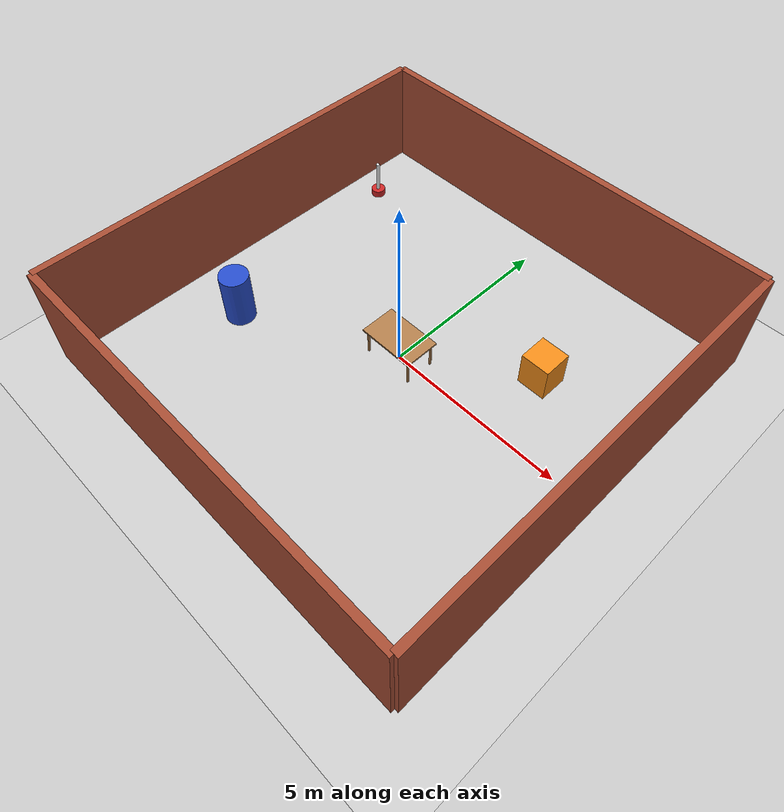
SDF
<?xml version="1.0" ?>
<sdf version="1.6">
  <world name="multi_world">

    <!-- Physics settings -->
    <physics type="ode">
      <max_step_size>0.001</max_step_size>
      <real_time_factor>1.0</real_time_factor>
      <real_time_update_rate>1000</real_time_update_rate>
    </physics>

    <!-- Lighting -->
    <light type="directional" name="sun">
      <cast_shadows>true</cast_shadows>
      <pose>0 0 10 0 0 0</pose>
      <diffuse>0.8 0.8 0.8 1</diffuse>
      <specular>0.2 0.2 0.2 1</specular>
      <attenuation>
        <range>1000</range>
        <constant>0.9</constant>
        <linear>0.01</linear>
        <quadratic>0.001</quadratic>
      </attenuation>
      <direction>-0.5 0.1 -0.9</direction>
    </light>

    <!-- Ground plane -->
    <model name="ground_plane">
      <static>true</static>
      <link name="link">
        <collision name="collision">
          <geometry>
            <plane>
              <normal>0 0 1</normal>
              <size>20 20</size>
            </plane>
          </geometry>
          <surface>
            <friction>
              <ode>
                <mu>100</mu>
                <mu2>50</mu2>
              </ode>
            </friction>
          </surface>
        </collision>
        <visual name="visual">
          <cast_shadows>false</cast_shadows>
          <geometry>
            <plane>
              <normal>0 0 1</normal>
              <size>20 20</size>
            </plane>
          </geometry>
          <material>
            <script>
              <uri>file://media/materials/scripts/gazebo.material</uri>
              <name>Gazebo/Grey</name>
            </script>
          </material>
        </visual>
      </link>
    </model>

    <!-- Room walls -->
    <model name="wall_north">
      <static>true</static>
      <pose>0 6 1.5 0 0 0</pose>
      <link name="link">
        <collision name="collision">
          <geometry><box><size>12 0.2 3</size></box></geometry>
        </collision>
        <visual name="visual">
          <geometry><box><size>12 0.2 3</size></box></geometry>
          <material>
            <script>
              <uri>file://media/materials/scripts/gazebo.material</uri>
              <name>Gazebo/Bricks</name>
            </script>
          </material>
        </visual>
      </link>
    </model>

    <model name="wall_south">
      <static>true</static>
      <pose>0 -6 1.5 0 0 0</pose>
      <link name="link">
        <collision name="collision">
          <geometry><box><size>12 0.2 3</size></box></geometry>
        </collision>
        <visual name="visual">
          <geometry><box><size>12 0.2 3</size></box></geometry>
          <material>
            <script>
              <uri>file://media/materials/scripts/gazebo.material</uri>
              <name>Gazebo/Bricks</name>
            </script>
          </material>
        </visual>
      </link>
    </model>

    <model name="wall_east">
      <static>true</static>
      <pose>6 0 1.5 0 0 1.5707</pose>
      <link name="link">
        <collision name="collision">
          <geometry><box><size>12 0.2 3</size></box></geometry>
        </collision>
        <visual name="visual">
          <geometry><box><size>12 0.2 3</size></box></geometry>
          <material>
            <script>
              <uri>file://media/materials/scripts/gazebo.material</uri>
              <name>Gazebo/Bricks</name>
            </script>
          </material>
        </visual>
      </link>
    </model>

    <model name="wall_west">
      <static>true</static>
      <pose>-6 0 1.5 0 0 1.5707</pose>
      <link name="link">
        <collision name="collision">
          <geometry><box><size>12 0.2 3</size></box></geometry>
        </collision>
        <visual name="visual">
          <geometry><box><size>12 0.2 3</size></box></geometry>
          <material>
            <script>
              <uri>file://media/materials/scripts/gazebo.material</uri>
              <name>Gazebo/Bricks</name>
            </script>
          </material>
        </visual>
      </link>
    </model>

    <!-- Simple obstacles -->
    <model name="obstacle_box_1">
      <static>true</static>
      <pose>3 2 0.5 0 0 0</pose>
      <link name="link">
        <collision name="collision">
          <geometry><box><size>0.8 0.8 1</size></box></geometry>
        </collision>
        <visual name="visual">
          <geometry><box><size>0.8 0.8 1</size></box></geometry>
          <material>
            <script>
              <uri>file://media/materials/scripts/gazebo.material</uri>
              <name>Gazebo/Orange</name>
            </script>
          </material>
        </visual>
      </link>
    </model>

    <model name="obstacle_cylinder_1">
      <static>true</static>
      <pose>-4 -2 0.75 0 0 0</pose>
      <link name="link">
        <collision name="collision">
          <geometry><cylinder><radius>0.4</radius><length>1.5</length></cylinder></geometry>
        </collision>
        <visual name="visual">
          <geometry><cylinder><radius>0.4</radius><length>1.5</length></cylinder></geometry>
          <material>
            <script>
              <uri>file://media/materials/scripts/gazebo.material</uri>
              <name>Gazebo/Blue</name>
            </script>
          </material>
        </visual>
      </link>
    </model>

    <!-- Main table -->
    <model name="main_table">
      <static>true</static>
      <pose>0 0 0 0 0 0</pose>

      <!-- Table top -->
      <link name="table_top">
        <pose>0 0 0.8 0 0 0</pose>
        <collision name="collision">
          <geometry><box><size>1.6 1.0 0.05</size></box></geometry>
        </collision>
        <visual name="visual">
          <geometry><box><size>1.6 1.0 0.05</size></box></geometry>
          <material>
            <script>
              <uri>file://media/materials/scripts/gazebo.material</uri>
              <name>Gazebo/WoodPallet</name>
            </script>
          </material>
        </visual>
      </link>

      <!-- Table legs -->
      <link name="leg1">
        <pose>-0.7 0.4 0.4 0 0 0</pose>
        <collision name="collision">
          <geometry><box><size>0.05 0.05 0.8</size></box></geometry>
        </collision>
        <visual name="visual">
          <geometry><box><size>0.05 0.05 0.8</size></box></geometry>
          <material>
            <script>
              <uri>file://media/materials/scripts/gazebo.material</uri>
              <name>Gazebo/WoodPallet</name>
            </script>
          </material>
        </visual>
      </link>

      <link name="leg2">
        <pose>0.7 0.4 0.4 0 0 0</pose>
        <collision name="collision">
          <geometry><box><size>0.05 0.05 0.8</size></box></geometry>
        </collision>
        <visual name="visual">
          <geometry><box><size>0.05 0.05 0.8</size></box></geometry>
          <material>
            <script>
              <uri>file://media/materials/scripts/gazebo.material</uri>
              <name>Gazebo/WoodPallet</name>
            </script>
          </material>
        </visual>
      </link>

      <link name="leg3">
        <pose>-0.7 -0.4 0.4 0 0 0</pose>
        <collision name="collision">
          <geometry><box><size>0.05 0.05 0.8</size></box></geometry>
        </collision>
        <visual name="visual">
          <geometry><box><size>0.05 0.05 0.8</size></box></geometry>
          <material>
            <script>
              <uri>file://media/materials/scripts/gazebo.material</uri>
              <name>Gazebo/WoodPallet</name>
            </script>
          </material>
        </visual>
      </link>

      <link name="leg4">
        <pose>0.7 -0.4 0.4 0 0 0</pose>
        <collision name="collision">
          <geometry><box><size>0.05 0.05 0.8</size></box></geometry>
        </collision>
        <visual name="visual">
          <geometry><box><size>0.05 0.05 0.8</size></box></geometry>
          <material>
            <script>
              <uri>file://media/materials/scripts/gazebo.material</uri>
              <name>Gazebo/WoodPallet</name>
            </script>
          </material>
        </visual>
      </link>
    </model>

    <!-- Glass on the table -->
    <model name="pickup_glass">
      <pose>0 0 0.87 0 0 0</pose>
      <link name="link">
        <collision name="collision">
          <geometry><cylinder><radius>0.035</radius><length>0.12</length></cylinder></geometry>
        </collision>
        <visual name="visual">
          <geometry><cylinder><radius>0.035</radius><length>0.12</length></cylinder></geometry>
          <material>
            <script>
              <uri>file://media/materials/scripts/gazebo.material</uri>
              <name>Gazebo/Blue</name>
            </script>
          </material>
        </visual>
        <inertial>
          <mass>0.15</mass>
          <inertia>
            <ixx>0.0002</ixx>
            <ixy>0</ixy>
            <ixz>0</ixz>
            <iyy>0.0002</iyy>
            <iyz>0</iyz>
            <izz>0.0001</izz>
          </inertia>
        </inertial>
      </link>
    </model>

    <!-- Simple robot placeholder (visual representation) -->
    <model name="robot_placeholder">
      <static>false</static>
      <pose>-5 4 0.1 0 0 0</pose>
      <link name="base">
        <collision name="collision">
          <geometry><cylinder><radius>0.2</radius><length>0.2</length></cylinder></geometry>
        </collision>
        <visual name="visual">
          <geometry><cylinder><radius>0.2</radius><length>0.2</length></cylinder></geometry>
          <material>
            <script>
              <uri>file://media/materials/scripts/gazebo.material</uri>
              <name>Gazebo/Red</name>
            </script>
          </material>
        </visual>
        <inertial>
          <mass>50</mass>
          <inertia>
            <ixx>1</ixx>
            <ixy>0</ixy>
            <ixz>0</ixz>
            <iyy>1</iyy>
            <iyz>0</iyz>
            <izz>1</izz>
          </inertia>
        </inertial>
      </link>

      <!-- Simple mast -->
      <link name="mast">
        <pose>0 0 0.5 0 0 0</pose>
        <collision name="collision">
          <geometry><cylinder><radius>0.05</radius><length>1.0</length></cylinder></geometry>
        </collision>
        <visual name="visual">
          <geometry><cylinder><radius>0.05</radius><length>1.0</length></cylinder></geometry>
          <material>
            <script>
              <uri>file://media/materials/scripts/gazebo.material</uri>
              <name>Gazebo/White</name>
            </script>
          </material>
        </visual>
        <inertial>
          <mass>5</mass>
          <inertia>
            <ixx>0.1</ixx>
            <ixy>0</ixy>
            <ixz>0</ixz>
            <iyy>0.1</iyy>
            <iyz>0</iyz>
            <izz>0.1</izz>
          </inertia>
        </inertial>
      </link>

      <!-- Joint between base and mast -->
      <joint name="base_to_mast" type="fixed">
        <parent>base</parent>
        <child>mast</child>
      </joint>
    </model>

  </world>
</sdf>
